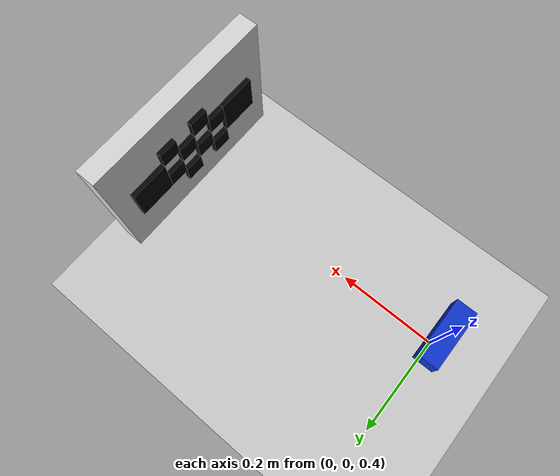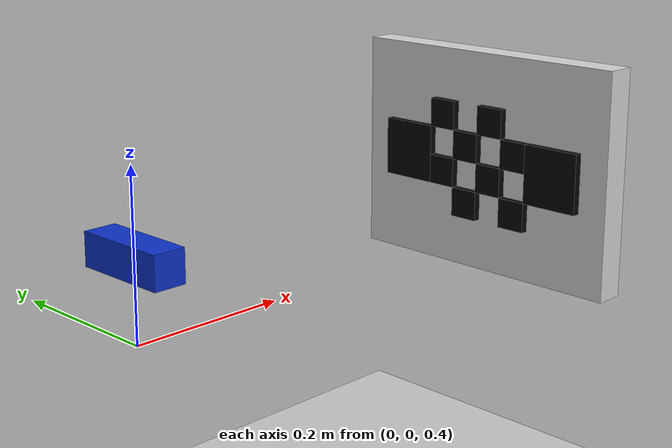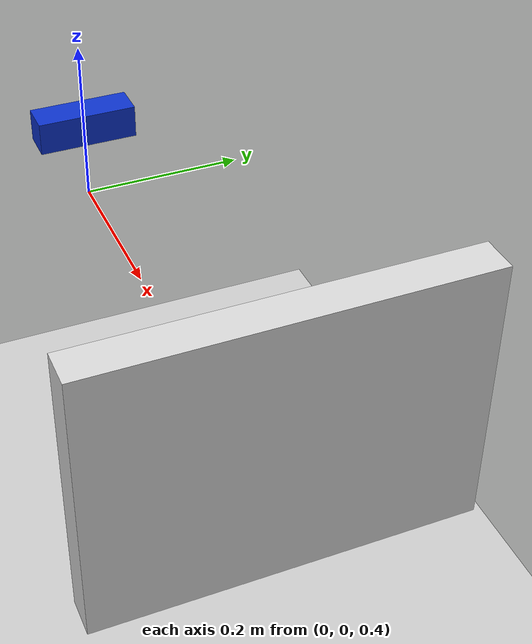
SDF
<?xml version="1.0"?>
<sdf version="1.7">
  <world name="stereo_test">
    <include><uri>model://ground_plane</uri></include>
    <include><uri>model://sun</uri></include>
    <include><uri>model://stereo_rig</uri></include>

    <!-- A 0.40 m wide high-contrast panel, centred 0.60 m in front of the rig. -->
    <model name="distance_panel_0_60m">
      <static>true</static>
      <pose>0.60 0 0.50 0 0 0</pose>
      <link name="panel_link">
        <visual name="panel_visual">
          <geometry><box><size>0.04 0.40 0.30</size></box></geometry>
          <material><ambient>0.85 0.85 0.85 1</ambient></material>
        </visual>
        <!-- Checker texture gives the stereo matcher features at the image centre. -->
        <visual name="checker_1"><pose>-0.025 -0.06 -0.06 0 0 0</pose><geometry><box><size>0.01 0.04 0.04</size></box></geometry><material><ambient>0.02 0.02 0.02 1</ambient></material></visual>
        <visual name="checker_2"><pose>-0.025 0.02 -0.06 0 0 0</pose><geometry><box><size>0.01 0.04 0.04</size></box></geometry><material><ambient>0.02 0.02 0.02 1</ambient></material></visual>
        <visual name="checker_3"><pose>-0.025 -0.02 -0.02 0 0 0</pose><geometry><box><size>0.01 0.04 0.04</size></box></geometry><material><ambient>0.02 0.02 0.02 1</ambient></material></visual>
        <visual name="checker_4"><pose>-0.025 0.06 -0.02 0 0 0</pose><geometry><box><size>0.01 0.04 0.04</size></box></geometry><material><ambient>0.02 0.02 0.02 1</ambient></material></visual>
        <visual name="checker_5"><pose>-0.025 -0.06 0.02 0 0 0</pose><geometry><box><size>0.01 0.04 0.04</size></box></geometry><material><ambient>0.02 0.02 0.02 1</ambient></material></visual>
        <visual name="checker_6"><pose>-0.025 0.02 0.02 0 0 0</pose><geometry><box><size>0.01 0.04 0.04</size></box></geometry><material><ambient>0.02 0.02 0.02 1</ambient></material></visual>
        <visual name="checker_7"><pose>-0.025 -0.02 0.06 0 0 0</pose><geometry><box><size>0.01 0.04 0.04</size></box></geometry><material><ambient>0.02 0.02 0.02 1</ambient></material></visual>
        <visual name="checker_8"><pose>-0.025 0.06 0.06 0 0 0</pose><geometry><box><size>0.01 0.04 0.04</size></box></geometry><material><ambient>0.02 0.02 0.02 1</ambient></material></visual>
        <collision name="panel_collision">
          <geometry><box><size>0.04 0.40 0.30</size></box></geometry>
        </collision>
      </link>
    </model>
    <model name="left_marker">
      <static>true</static>
      <pose>0.575 -0.12 0.50 0 0 0</pose>
      <link name="link"><visual name="visual"><geometry><box><size>0.01 0.08 0.08</size></box></geometry><material><ambient>0.02 0.02 0.02 1</ambient></material></visual></link>
    </model>
    <model name="right_marker">
      <static>true</static>
      <pose>0.575 0.12 0.50 0 0 0</pose>
      <link name="link"><visual name="visual"><geometry><box><size>0.01 0.08 0.08</size></box></geometry><material><ambient>0.02 0.02 0.02 1</ambient></material></visual></link>
    </model>
  </world>
</sdf>

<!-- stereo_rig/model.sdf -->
<sdf version="1.7">
  <model name="stereo_rig">
    <static>true</static>
    <link name="stereo_left_camera_optical_frame">
      <pose>0 0 0.50 0 0 0</pose>
      <visual name="housing">
        <geometry><box><size>0.04 0.12 0.04</size></box></geometry>
        <material><ambient>0.05 0.20 0.80 1</ambient></material>
      </visual>
      <sensor name="stereo_rig" type="multicamera">
        <always_on>true</always_on>
        <update_rate>30</update_rate>
        <visualize>false</visualize>
        <camera name="left">
          <horizontal_fov>1.138626</horizontal_fov>
          <image><width>640</width><height>480</height><format>R8G8B8</format></image>
          <clip><near>0.10</near><far>4.00</far></clip>
        </camera>
        <camera name="right">
          <pose>0 -0.06 0 0 0 0</pose>
          <horizontal_fov>1.138626</horizontal_fov>
          <image><width>640</width><height>480</height><format>R8G8B8</format></image>
          <clip><near>0.10</near><far>4.00</far></clip>
        </camera>
        <plugin name="stereo_camera" filename="libgazebo_ros_camera.so">
          <ros><namespace>/stereo</namespace></ros>
          <camera_name>stereo_rig</camera_name>
          <frame_name>stereo_left_camera_optical_frame</frame_name>
          <hack_baseline>0.06</hack_baseline>
        </plugin>
      </sensor>
    </link>
  </model>
</sdf>
